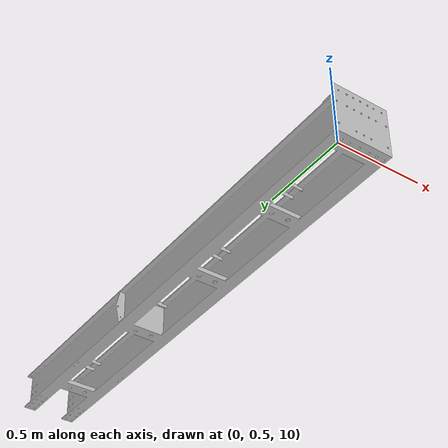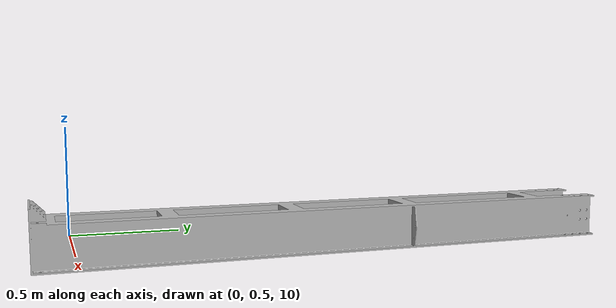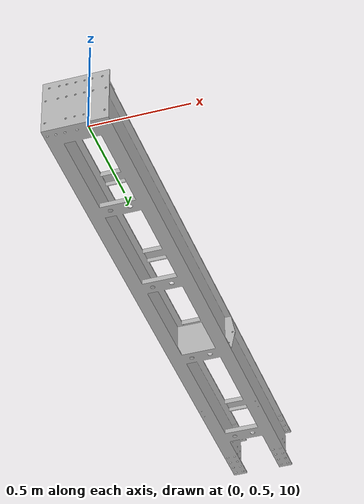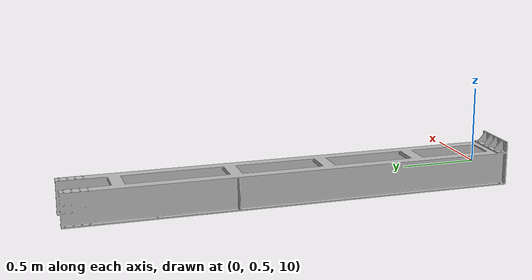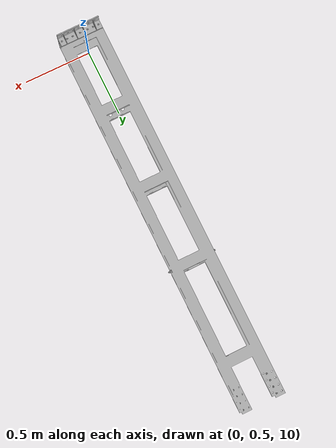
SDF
<?xml version='1.0'?>
<sdf version='1.4'>
  <model name="FGAG1003_VIGA_3">
 <static>true</static>
 <link name="mesh_link">
	<inertial>
            <mass>100.0</mass>
 	</inertial>
        <visual name="visual">
        <geometry>
            <mesh><uri>model://FGAG1003_VIGA_3/meshes/FGAG1003_VIGA_3.stl</uri></mesh>
          </geometry>
        </visual>
        <collision name="collision">
          <geometry>
            <mesh><uri>model://FGAG1003_VIGA_3/meshes/FGAG1003_VIGA_3.stl</uri></mesh>
          </geometry>
        </collision>
      </link>
      <joint name='anchor' type='fixed'>
        <child>mesh_link</child>
        <parent>world</parent>
      </joint>
  </model>
</sdf>
